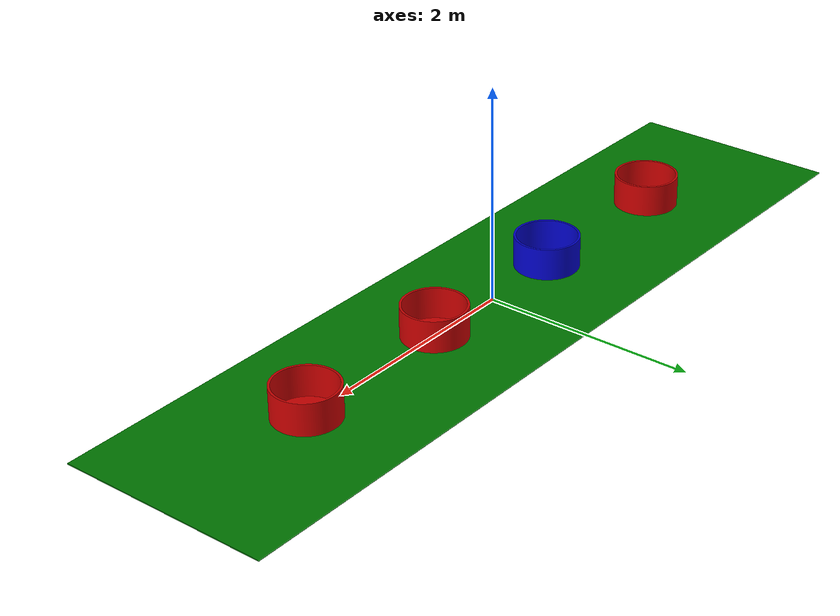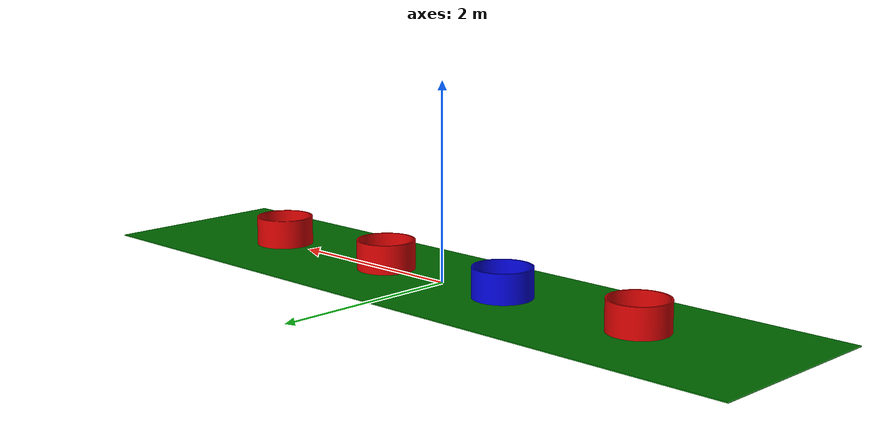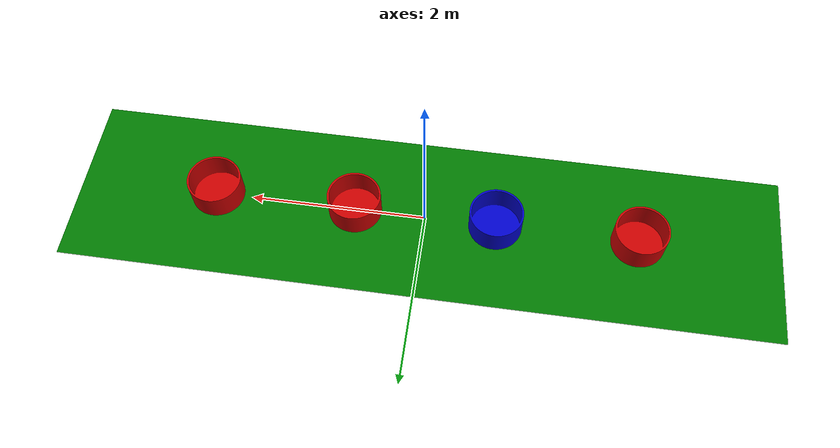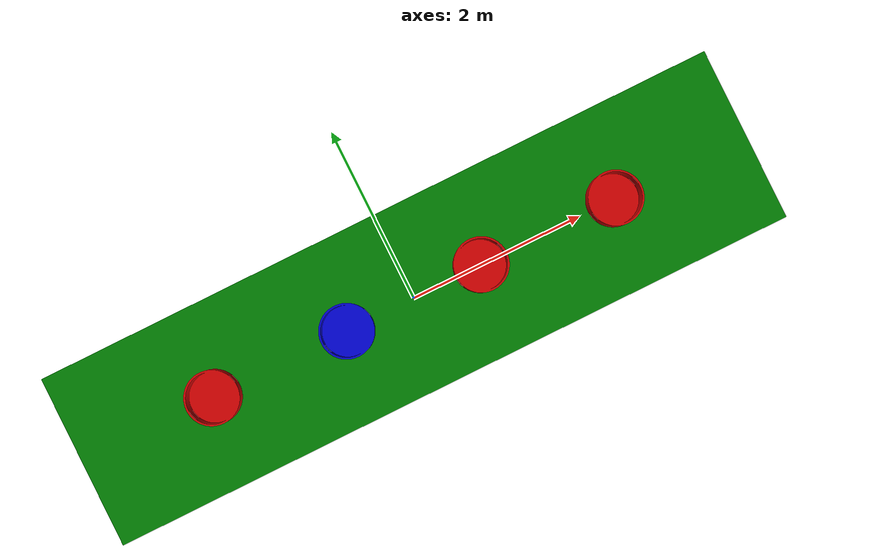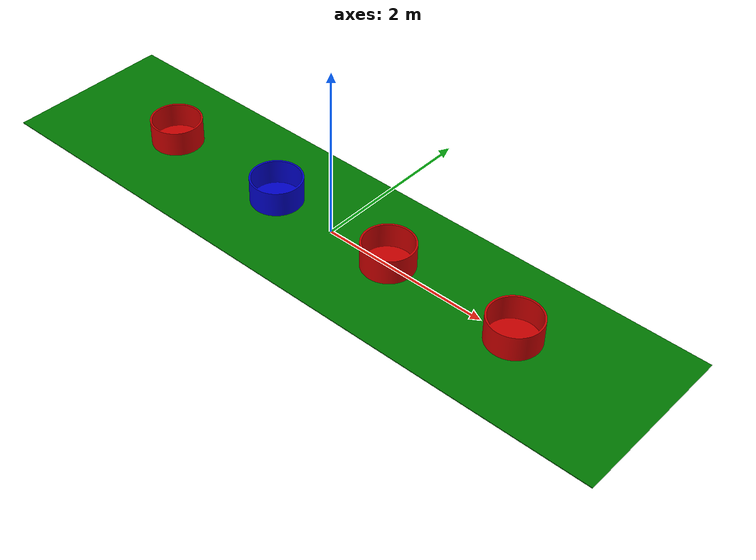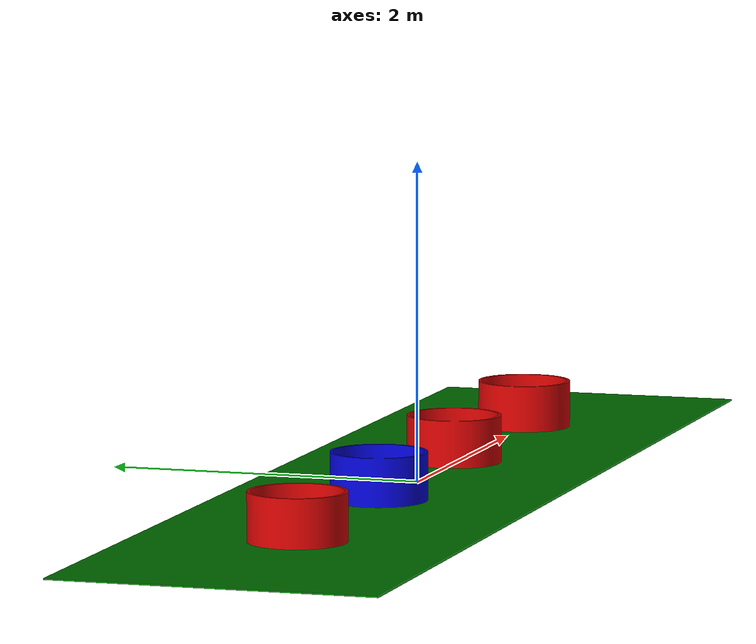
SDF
<?xml version="1.0"?>
<sdf version="1.11">
  <model name="sauvc_target_acquisition_area">
    <static>true</static>
    <link name="link">
      <visual name="target_acquistion_area">
        <cast_shadows>false</cast_shadows>
        <pose>0 0 0 0 0 0</pose>
        <geometry>
          <mesh>
            <scale>1 1 1</scale>
            <uri>model://sauvc_target_acquisition_area/green_mat.dae</uri>
          </mesh>
        </geometry>
      </visual>
    </link>

    <include>
      <name>left_red_drum</name>
      <uri>model://sauvc_red_drum</uri>
      <pose>-2.4 0 0.01 0 0 0</pose>
    </include>

    <include>
      <uri>model://sauvc_blue_drum</uri>
      <pose>-0.8 0 0.01 0 0 0</pose>
    </include>

    <include>
      <name>middle_red_drum</name>
      <uri>model://sauvc_red_drum</uri>
      <pose>0.8 0 0.01 0 0 0</pose>
    </include>

    <include>
      <name>right_red_drum</name>
      <uri>model://sauvc_red_drum</uri>
      <pose>2.4 0 0.01 0 0 0</pose>
    </include>
  </model>
</sdf>

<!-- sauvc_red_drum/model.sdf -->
<sdf version="1.11">
  <model name="sauvc_red_drum">
    <static>true</static>
    <link name="link">

      <collision name="red_drum_collision">
        <pose>0 0 0 0 0 0</pose>
        <geometry>
          <mesh>
            <scale>1 1 1</scale>
            <uri>model://sauvc_red_drum/red_drum.dae</uri>
          </mesh>
        </geometry>
      </collision>

      <visual name="red_drum">
        <cast_shadows>false</cast_shadows>
        <pose>0 0 0 0 0 0</pose>
        <geometry>
          <mesh>
            <scale>1 1 1</scale>
            <uri>model://sauvc_red_drum/red_drum.dae</uri>
          </mesh>
        </geometry>
      </visual>

    </link>
  </model>
</sdf>

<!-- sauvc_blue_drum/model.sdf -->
<sdf version="1.11">  <model name="sauvc_blue_drum">
    <static>true</static>
    <link name="link">

      <collision name="blue_drum_collision">
        <pose>0 0 0 0 0 0</pose>
        <geometry>
          <mesh>
            <scale>1 1 1</scale>
            <uri>model://sauvc_blue_drum/blue_drum.dae</uri>
          </mesh>

        </geometry>
      </collision>

      <visual name="blue_drum">
        <cast_shadows>false</cast_shadows>
        <pose>0 0 0 0 0 0</pose>
        <geometry>
          <mesh>
            <scale>1 1 1</scale>
            <uri>model://sauvc_blue_drum/blue_drum.dae</uri>
          </mesh>
        </geometry>
      </visual>

    </link>
  </model>
</sdf>
